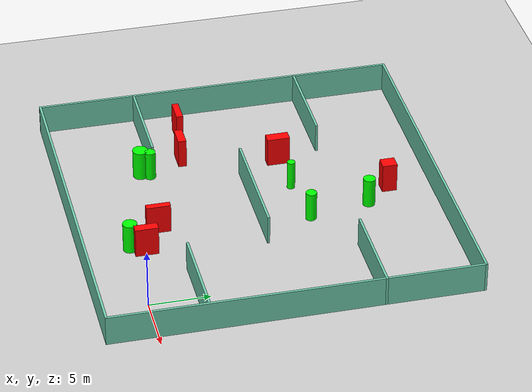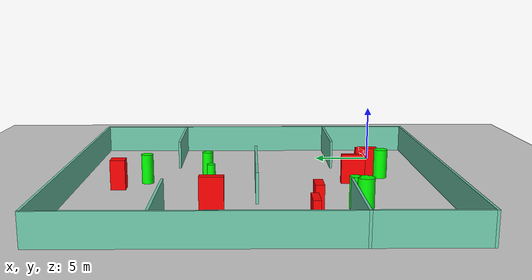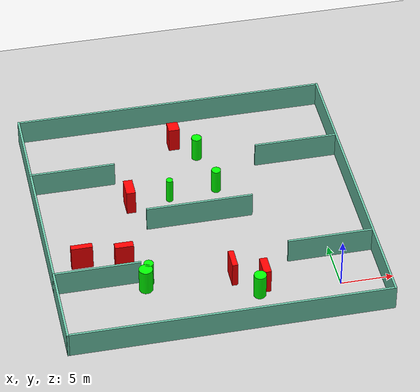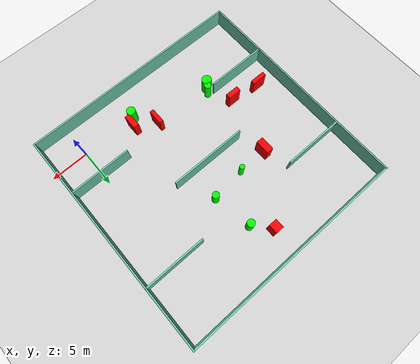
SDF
<sdf version="1.7">
 <world name="default">
  <light name="sun" type="directional">
   <pose>0 0 10 0 -0 0</pose>
   <diffuse>0.8 0.8 0.8 1</diffuse>
   <specular>0.2 0.2 0.2 1</specular>
   <attenuation>
    <range>1000</range>
    <constant>0.9</constant>
    <linear>0.01</linear>
    <quadratic>0.001</quadratic>
   </attenuation>
   <direction>-0.5 0.1 -0.9</direction>
   <spot><inner_angle>0</inner_angle><outer_angle>0</outer_angle><falloff>0</falloff></spot>
  </light>
  <model name="ground_plane">
   <static>1</static>
   <link name="link">
    <collision name="collision">
     <geometry><plane><normal>0 0 1</normal><size>100 100</size></plane></geometry>
     <surface>
      <contact><collide_bitmask>65535</collide_bitmask></contact>
      <friction><ode><mu>100</mu><mu2>50</mu2></ode></friction>
     </surface>
    </collision>
    <visual name="visual">
     <cast_shadows>0</cast_shadows>
     <geometry><plane><normal>0 0 1</normal><size>100 100</size></plane></geometry>
     <material>
      <script><uri>file://media/materials/scripts/gazebo.material</uri><name>Gazebo/Grey</name></script>
     </material>
    </visual>
   </link>
  </model>
  <gravity>0 0 -9.8</gravity>
  <magnetic_field>6e-06 2.3e-05 -4.2e-05</magnetic_field>
  <atmosphere type="adiabatic"/>
  <physics type="ode">
   <max_step_size>0.001</max_step_size>
   <real_time_factor>1</real_time_factor>
   <real_time_update_rate>1000</real_time_update_rate>
  </physics>
  <scene><ambient>0.4 0.4 0.4 1</ambient><background>0.7 0.7 0.7 1</background><shadows>1</shadows></scene>
  <spherical_coordinates>
   <surface_model>EARTH_WGS84</surface_model>
   <latitude_deg>0</latitude_deg>
   <longitude_deg>0</longitude_deg>
   <elevation>0</elevation>
   <heading_deg>0</heading_deg>
  </spherical_coordinates>
  <model name="my_base_walls">
   <link name="Wall_10">
    <collision name="Wall_10_Collision">
     <geometry><box><size>8.2 0.2 2.5</size></box></geometry>
     <pose>0 0 1.25 0 -0 0</pose>
    </collision>
    <visual name="Wall_10_Visual">
     <pose>0 0 1.25 0 -0 0</pose>
     <geometry><box><size>8.2 0.2 2.5</size></box></geometry>
     <material>
      <script><uri>file://media/materials/scripts/gazebo.material</uri><name>Gazebo/Grey</name></script>
      <ambient>0.435294 0.796078 0.67451 1</ambient>
     </material>
     <meta><layer>0</layer></meta>
    </visual>
    <pose>-11 -7 0 0 -0 0</pose>
   </link>
   <link name="Wall_12">
    <collision name="Wall_12_Collision">
     <geometry><box><size>8.2 0.2 2.5</size></box></geometry>
     <pose>0 0 1.25 0 -0 0</pose>
    </collision>
    <visual name="Wall_12_Visual">
     <pose>0 0 1.25 0 -0 0</pose>
     <geometry><box><size>8.2 0.2 2.5</size></box></geometry>
     <material>
      <script><uri>file://media/materials/scripts/gazebo.material</uri><name>Gazebo/Grey</name></script>
      <ambient>0.435294 0.796078 0.67451 1</ambient>
     </material>
     <meta><layer>0</layer></meta>
    </visual>
    <pose>-11 7 0 0 -0 0</pose>
   </link>
   <link name="Wall_14">
    <collision name="Wall_14_Collision">
     <geometry><box><size>8.2 0.2 2.5</size></box></geometry>
     <pose>0 0 1.25 0 -0 0</pose>
    </collision>
    <visual name="Wall_14_Visual">
     <pose>0 0 1.25 0 -0 0</pose>
     <geometry><box><size>8.2 0.2 2.5</size></box></geometry>
     <material>
      <script><uri>file://media/materials/scripts/gazebo.material</uri><name>Gazebo/Grey</name></script>
      <ambient>0.435294 0.796078 0.67451 1</ambient>
     </material>
     <meta><layer>0</layer></meta>
    </visual>
    <pose>11 7 0 0 -0 3.14159</pose>
   </link>
   <link name="Wall_16">
    <collision name="Wall_16_Collision">
     <geometry><box><size>10.2 0.2 2.5</size></box></geometry>
     <pose>0 0 1.25 0 -0 0</pose>
    </collision>
    <visual name="Wall_16_Visual">
     <pose>0 0 1.25 0 -0 0</pose>
     <geometry><box><size>10.2 0.2 2.5</size></box></geometry>
     <material>
      <script><uri>file://media/materials/scripts/gazebo.material</uri><name>Gazebo/Grey</name></script>
      <ambient>0.435294 0.796078 0.67451 1</ambient>
     </material>
     <meta><layer>0</layer></meta>
    </visual>
    <pose>0 0 0 0 -0 3.14159</pose>
   </link>
   <link name="Wall_2">
    <collision name="Wall_2_Collision">
     <geometry><box><size>30.2 0.2 2.5</size></box></geometry>
     <pose>0 0 1.25 0 -0 0</pose>
    </collision>
    <visual name="Wall_2_Visual">
     <pose>0 0 1.25 0 -0 0</pose>
     <geometry><box><size>30.2 0.2 2.5</size></box></geometry>
     <material>
      <script><uri>file://media/materials/scripts/gazebo.material</uri><name>Gazebo/Grey</name></script>
      <ambient>0.435294 0.796078 0.67451 1</ambient>
     </material>
     <meta><layer>0</layer></meta>
    </visual>
    <pose>0 -15 0 0 -0 3.14159</pose>
   </link>
   <link name="Wall_3">
    <collision name="Wall_3_Collision">
     <geometry><box><size>30.2 0.2 2.5</size></box></geometry>
     <pose>0 0 1.25 0 -0 0</pose>
    </collision>
    <visual name="Wall_3_Visual">
     <pose>0 0 1.25 0 -0 0</pose>
     <geometry><box><size>30.2 0.2 2.5</size></box></geometry>
     <material>
      <script><uri>file://media/materials/scripts/gazebo.material</uri><name>Gazebo/Grey</name></script>
      <ambient>0.435294 0.796078 0.67451 1</ambient>
     </material>
     <meta><layer>0</layer></meta>
    </visual>
    <pose>-15 0 0 0 -0 1.5708</pose>
   </link>
   <link name="Wall_4">
    <collision name="Wall_4_Collision">
     <geometry><box><size>30.2 0.2 2.5</size></box></geometry>
     <pose>0 0 1.25 0 -0 0</pose>
    </collision>
    <visual name="Wall_4_Visual">
     <pose>0 0 1.25 0 -0 0</pose>
     <geometry><box><size>30.2 0.2 2.5</size></box></geometry>
     <material>
      <script><uri>file://media/materials/scripts/gazebo.material</uri><name>Gazebo/Grey</name></script>
      <ambient>0.435294 0.796078 0.67451 1</ambient>
     </material>
     <meta><layer>0</layer></meta>
    </visual>
    <pose>0 15 0 0 -0 0</pose>
   </link>
   <link name="Wall_6">
    <collision name="Wall_6_Collision">
     <geometry><box><size>30.2 0.2 2.5</size></box></geometry>
     <pose>0 0 1.25 0 -0 0</pose>
    </collision>
    <visual name="Wall_6_Visual">
     <pose>0 0 1.25 0 -0 0</pose>
     <geometry><box><size>30.2 0.2 2.5</size></box></geometry>
     <material>
      <script><uri>file://media/materials/scripts/gazebo.material</uri><name>Gazebo/Grey</name></script>
      <ambient>0.435294 0.796078 0.67451 1</ambient>
     </material>
     <meta><layer>0</layer></meta>
    </visual>
    <pose>15 0 0 0 -0 1.5708</pose>
   </link>
   <link name="Wall_8">
    <collision name="Wall_8_Collision">
     <geometry><box><size>8.2 0.2 2.5</size></box></geometry>
     <pose>0 0 1.25 0 -0 0</pose>
    </collision>
    <visual name="Wall_8_Visual">
     <pose>0 0 1.25 0 -0 0</pose>
     <geometry><box><size>8.2 0.2 2.5</size></box></geometry>
     <material>
      <script><uri>file://media/materials/scripts/gazebo.material</uri><name>Gazebo/Grey</name></script>
      <ambient>0.435294 0.796078 0.67451 1</ambient>
     </material>
     <meta><layer>0</layer></meta>
    </visual>
    <pose>11 -7 0 0 -0 3.14159</pose>
   </link>
   <static>1</static>
   <pose>-11 11 0 0 -0 0</pose>
  </model>
  <model name="cylinder1">
   <static>1</static>
   <link name="link">
    <inertial>
     <mass>1</mass>
     <inertia><ixx>0.5</ixx><ixy>0</ixy><ixz>0</ixz><iyy>0.5</iyy><iyz>0</iyz><izz>1</izz></inertia>
    </inertial>
    <collision name="collision">
     <geometry><cylinder><radius>0.45283384322769293</radius><length>2.5</length></cylinder></geometry>
    </collision>
    <visual name="visual">
     <geometry><cylinder><radius>0.45283384322769293</radius><length>2.5</length></cylinder></geometry>
     <material>
      <ambient>0 1 0 1</ambient>
      <diffuse>0 1 0 1</diffuse>
      <specular>0.1 0.1 0.1 1</specular>
      <emissive>0 0 0 0</emissive>
     </material>
    </visual>
   </link>
   <pose>-8.530503530056638 15.161839215124427 1.25 0 0 0</pose>
  </model>
  <model name="cylinder2">
   <static>1</static>
   <link name="link">
    <inertial>
     <mass>1</mass>
     <inertia><ixx>0.5</ixx><ixy>0</ixy><ixz>0</ixz><iyy>0.5</iyy><iyz>0</iyz><izz>1</izz></inertia>
    </inertial>
    <collision name="collision">
     <geometry><cylinder><radius>0.3284368235975126</radius><length>2.5</length></cylinder></geometry>
    </collision>
    <visual name="visual">
     <geometry><cylinder><radius>0.3284368235975126</radius><length>2.5</length></cylinder></geometry>
     <material>
      <ambient>0 1 0 1</ambient>
      <diffuse>0 1 0 1</diffuse>
      <specular>0.1 0.1 0.1 1</specular>
      <emissive>0 0 0 0</emissive>
     </material>
    </visual>
   </link>
   <pose>-13.180873145205814 14.63055302062427 1.25 0 0 0</pose>
  </model>
  <model name="cylinder3">
   <static>1</static>
   <link name="link">
    <inertial>
     <mass>1</mass>
     <inertia><ixx>0.5</ixx><ixy>0</ixy><ixz>0</ixz><iyy>0.5</iyy><iyz>0</iyz><izz>1</izz></inertia>
    </inertial>
    <collision name="collision">
     <geometry><cylinder><radius>0.500136664358722</radius><length>2.5</length></cylinder></geometry>
    </collision>
    <visual name="visual">
     <geometry><cylinder><radius>0.500136664358722</radius><length>2.5</length></cylinder></geometry>
     <material>
      <ambient>0 1 0 1</ambient>
      <diffuse>0 1 0 1</diffuse>
      <specular>0.1 0.1 0.1 1</specular>
      <emissive>0 0 0 0</emissive>
     </material>
    </visual>
   </link>
   <pose>-9.39724707561737 20.246627728376737 1.25 0 0 0</pose>
  </model>
  <model name="cylinder4">
   <static>1</static>
   <link name="link">
    <inertial>
     <mass>1</mass>
     <inertia><ixx>0.5</ixx><ixy>0</ixy><ixz>0</ixz><iyy>0.5</iyy><iyz>0</iyz><izz>1</izz></inertia>
    </inertial>
    <collision name="collision">
     <geometry><cylinder><radius>0.44975083978017616</radius><length>2.5</length></cylinder></geometry>
    </collision>
    <visual name="visual">
     <geometry><cylinder><radius>0.44975083978017616</radius><length>2.5</length></cylinder></geometry>
     <material>
      <ambient>0 1 0 1</ambient>
      <diffuse>0 1 0 1</diffuse>
      <specular>0.1 0.1 0.1 1</specular>
      <emissive>0 0 0 0</emissive>
     </material>
    </visual>
   </link>
   <pose>-17.26344373391779 3.662073059897933 1.25 0 0 0</pose>
  </model>
  <model name="cylinder5">
   <static>1</static>
   <link name="link">
    <inertial>
     <mass>1</mass>
     <inertia><ixx>0.5</ixx><ixy>0</ixy><ixz>0</ixz><iyy>0.5</iyy><iyz>0</iyz><izz>1</izz></inertia>
    </inertial>
    <collision name="collision">
     <geometry><cylinder><radius>0.6476195648047993</radius><length>2.5</length></cylinder></geometry>
    </collision>
    <visual name="visual">
     <geometry><cylinder><radius>0.6476195648047993</radius><length>2.5</length></cylinder></geometry>
     <material>
      <ambient>0 1 0 1</ambient>
      <diffuse>0 1 0 1</diffuse>
      <specular>0.1 0.1 0.1 1</specular>
      <emissive>0 0 0 0</emissive>
     </material>
    </visual>
   </link>
   <pose>-17.674755757297604 2.9297386460284525 1.25 0 0 0</pose>
  </model>
  <model name="cylinder6">
   <static>1</static>
   <link name="link">
    <inertial>
     <mass>1</mass>
     <inertia><ixx>0.5</ixx><ixy>0</ixy><ixz>0</ixz><iyy>0.5</iyy><iyz>0</iyz><izz>1</izz></inertia>
    </inertial>
    <collision name="collision">
     <geometry><cylinder><radius>0.5831536327591178</radius><length>2.5</length></cylinder></geometry>
    </collision>
    <visual name="visual">
     <geometry><cylinder><radius>0.5831536327591178</radius><length>2.5</length></cylinder></geometry>
     <material>
      <ambient>0 1 0 1</ambient>
      <diffuse>0 1 0 1</diffuse>
      <specular>0.1 0.1 0.1 1</specular>
      <emissive>0 0 0 0</emissive>
     </material>
    </visual>
   </link>
   <pose>-7.62346485472586 0.08337615955054334 1.25 0 0 0</pose>
  </model>
  <model name="box1">
   <static>1</static>
   <link name="link">
    <inertial>
     <mass>1</mass>
     <inertia><ixx>0.083</ixx><ixy>0</ixy><ixz>0</ixz><iyy>0.083</iyy><iyz>0</iyz><izz>0.083</izz></inertia>
    </inertial>
    <collision name="collision">
     <geometry><box><size>1.0820783258109898 1.2271308398456942 2.5</size></box></geometry>
    </collision>
    <visual name="visual">
     <geometry><box><size>1.0820783258109898 1.2271308398456942 2.5</size></box></geometry>
     <material>
      <ambient>1 0 0 1</ambient>
      <diffuse>1 0 0 1</diffuse>
      <specular>0.1 0.1 0.1 1</specular>
      <emissive>0 0 0 0</emissive>
     </material>
    </visual>
    <sensor name="my_contact" type="contact">
     <contact><collision>box_collision</collision><topic>__default_topic__</topic></contact>
    </sensor>
   </link>
   <pose>-11.306459270671438 22.3786004332704 1.25 0 0 0</pose>
  </model>
  <model name="box2">
   <static>1</static>
   <link name="link">
    <inertial>
     <mass>1</mass>
     <inertia><ixx>0.083</ixx><ixy>0</ixy><ixz>0</ixz><iyy>0.083</iyy><iyz>0</iyz><izz>0.083</izz></inertia>
    </inertial>
    <collision name="collision">
     <geometry><box><size>1.7524310657825224 0.6796281764799544 2.5</size></box></geometry>
    </collision>
    <visual name="visual">
     <geometry><box><size>1.7524310657825224 0.6796281764799544 2.5</size></box></geometry>
     <material>
      <ambient>1 0 0 1</ambient>
      <diffuse>1 0 0 1</diffuse>
      <specular>0.1 0.1 0.1 1</specular>
      <emissive>0 0 0 0</emissive>
     </material>
    </visual>
    <sensor name="my_contact" type="contact">
     <contact><collision>box_collision</collision><topic>__default_topic__</topic></contact>
    </sensor>
   </link>
   <pose>-19.038559831424166 6.576101725294436 1.25 0 0 0</pose>
  </model>
  <model name="box3">
   <static>1</static>
   <link name="link">
    <inertial>
     <mass>1</mass>
     <inertia><ixx>0.083</ixx><ixy>0</ixy><ixz>0</ixz><iyy>0.083</iyy><iyz>0</iyz><izz>0.083</izz></inertia>
    </inertial>
    <collision name="collision">
     <geometry><box><size>0.881964413810099 1.894824840545048 2.5</size></box></geometry>
    </collision>
    <visual name="visual">
     <geometry><box><size>0.881964413810099 1.894824840545048 2.5</size></box></geometry>
     <material>
      <ambient>1 0 0 1</ambient>
      <diffuse>1 0 0 1</diffuse>
      <specular>0.1 0.1 0.1 1</specular>
      <emissive>0 0 0 0</emissive>
     </material>
    </visual>
    <sensor name="my_contact" type="contact">
     <contact><collision>box_collision</collision><topic>__default_topic__</topic></contact>
    </sensor>
   </link>
   <pose>-17.101390837278586 14.434617472852047 1.25 0 0 0</pose>
  </model>
  <model name="box4">
   <static>1</static>
   <link name="link">
    <inertial>
     <mass>1</mass>
     <inertia><ixx>0.083</ixx><ixy>0</ixy><ixz>0</ixz><iyy>0.083</iyy><iyz>0</iyz><izz>0.083</izz></inertia>
    </inertial>
    <collision name="collision">
     <geometry><box><size>2.0221383525295993 0.5540932666500817 2.5</size></box></geometry>
    </collision>
    <visual name="visual">
     <geometry><box><size>2.0221383525295993 0.5540932666500817 2.5</size></box></geometry>
     <material>
      <ambient>1 0 0 1</ambient>
      <diffuse>1 0 0 1</diffuse>
      <specular>0.1 0.1 0.1 1</specular>
      <emissive>0 0 0 0</emissive>
     </material>
    </visual>
    <sensor name="my_contact" type="contact">
     <contact><collision>box_collision</collision><topic>__default_topic__</topic></contact>
    </sensor>
   </link>
   <pose>-22.90610616271804 7.14641954199293 1.25 0 0 0</pose>
  </model>
  <model name="box5">
   <static>1</static>
   <link name="link">
    <inertial>
     <mass>1</mass>
     <inertia><ixx>0.083</ixx><ixy>0</ixy><ixz>0</ixz><iyy>0.083</iyy><iyz>0</iyz><izz>0.083</izz></inertia>
    </inertial>
    <collision name="collision">
     <geometry><box><size>0.733833214264507 1.896526575186745 2.5</size></box></geometry>
    </collision>
    <visual name="visual">
     <geometry><box><size>0.733833214264507 1.896526575186745 2.5</size></box></geometry>
     <material>
      <ambient>1 0 0 1</ambient>
      <diffuse>1 0 0 1</diffuse>
      <specular>0.1 0.1 0.1 1</specular>
      <emissive>0 0 0 0</emissive>
     </material>
    </visual>
    <sensor name="my_contact" type="contact">
     <contact><collision>box_collision</collision><topic>__default_topic__</topic></contact>
    </sensor>
   </link>
   <pose>-6.881141329660322 1.2545524218498354 1.25 0 0 0</pose>
  </model>
  <model name="box6">
   <static>1</static>
   <link name="link">
    <inertial>
     <mass>1</mass>
     <inertia><ixx>0.083</ixx><ixy>0</ixy><ixz>0</ixz><iyy>0.083</iyy><iyz>0</iyz><izz>0.083</izz></inertia>
    </inertial>
    <collision name="collision">
     <geometry><box><size>0.5317204033058622 1.9985918146782313 2.5</size></box></geometry>
    </collision>
    <visual name="visual">
     <geometry><box><size>0.5317204033058622 1.9985918146782313 2.5</size></box></geometry>
     <material>
      <ambient>1 0 0 1</ambient>
      <diffuse>1 0 0 1</diffuse>
      <specular>0.1 0.1 0.1 1</specular>
      <emissive>0 0 0 0</emissive>
     </material>
    </visual>
    <sensor name="my_contact" type="contact">
     <contact><collision>box_collision</collision><topic>__default_topic__</topic></contact>
    </sensor>
   </link>
   <pose>-9.579780374122306 2.7678670217405035 1.25 0 0 0</pose>
  </model>
 </world>
</sdf>
